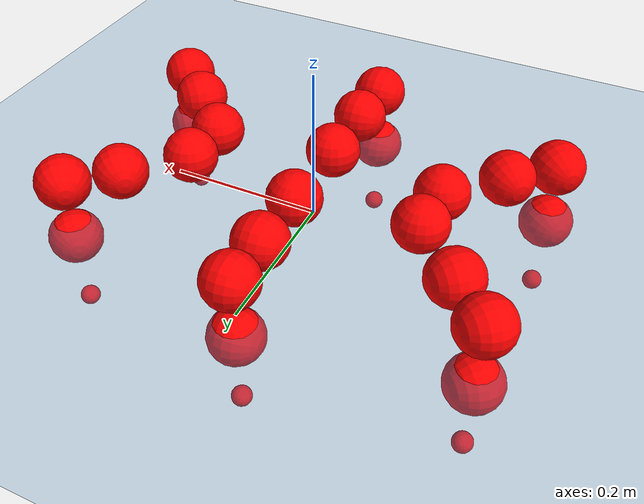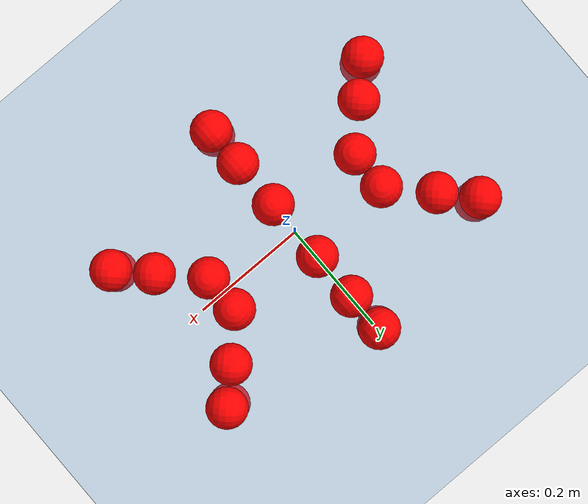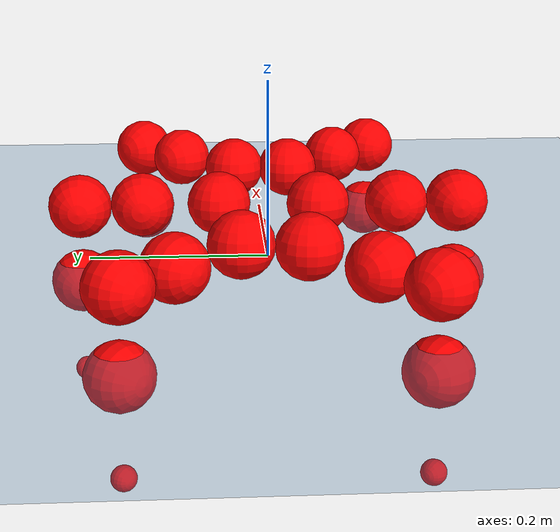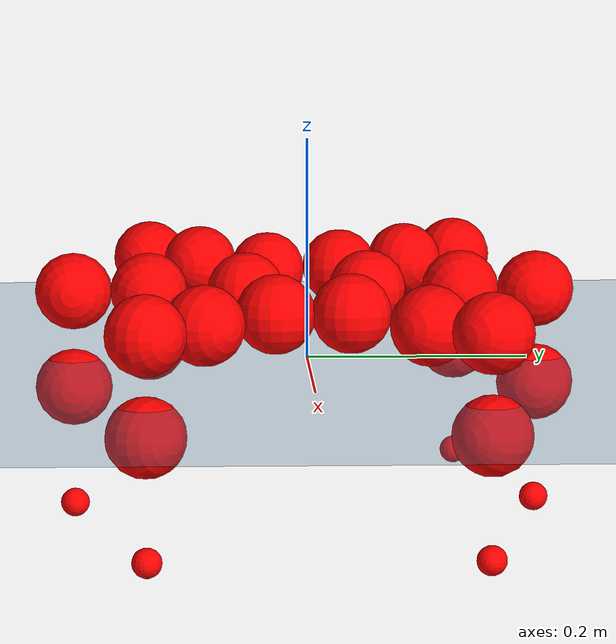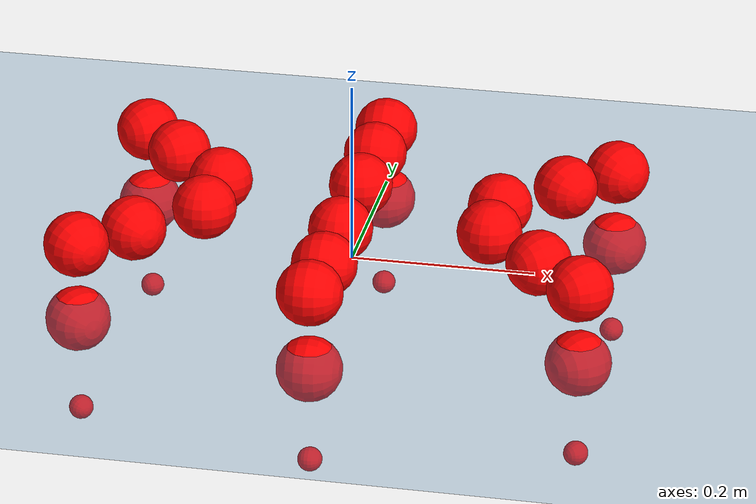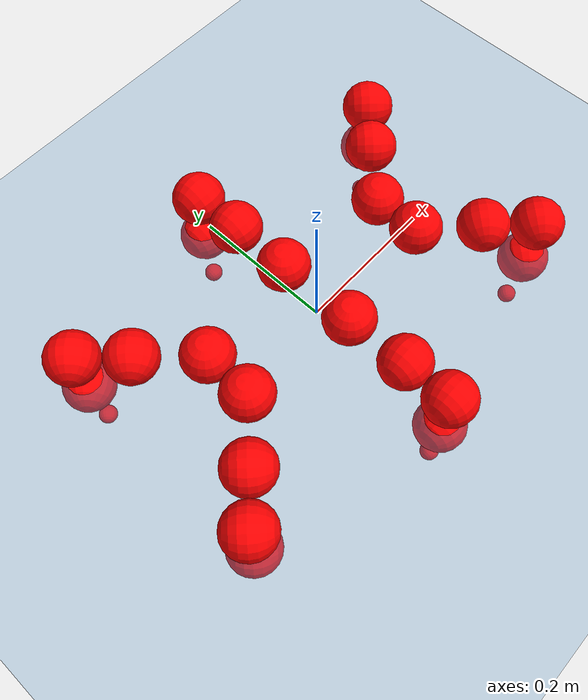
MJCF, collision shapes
<mujoco model="Golem">
  <compiler angle="radian" assetdir="assets" balanceinertia="true" inertiafromgeom="false"/>

  <option timestep="0.005" density="1.2" viscosity="2e-05"/>

  <size nkey="1"/>

  <visual>
    <quality shadowsize="8192"/>
    <map shadowclip="0.5"/>
  </visual>

  <default>
    <default class="/">
      <joint armature="0.01" damping="0.01" frictionloss="0.01"/>
      <geom contype="0" conaffinity="0" group="1" solref="-1000 -80"/>
      <site size="0.01 0.005 0.005" group="5"/>
      <general forcelimited="true" biastype="affine" gainprm="25" biasprm="0 -25 -0.5"/>
      <default class="visual">
        <geom type="mesh" group="2"/>
      </default>
      <default class="collision">
        <geom group="3"/>
      </default>
      <default class="foot">
        <geom size="0.01 0 0" condim="6" group="4" priority="1" solimp="0.015 1 0.01"/>
      </default>
      <default class="reward_collision_sphere">
        <geom group="5" rgba="1 0 0 1"/>
      </default>
    </default>
  </default>

  <asset>
    <texture type="skybox" colorspace="auto" name="//unnamed_texture_0" builtin="gradient" rgb1="0.95 0.95 0.95" rgb2="0.95 0.95 0.95" width="100" height="600"/>
    <texture type="2d" colorspace="auto" name="texplane" builtin="checker" rgb1="0.345 0.575 0.748" rgb2="0.345 0.575 0.748" markrgb="1 1 1" width="512" height="512"/>
    <material name="MatPlane" class="/" texture="texplane" texuniform="true" texrepeat="2 2" specular="0.9"/>
    <mesh name="body" class="/" file="body.stl" scale="0.001 0.001 0.001"/>
    <mesh name="coxa" class="/" file="coxa.stl" scale="0.001 0.001 0.001"/>
    <mesh name="femur" class="/" file="femur.stl" scale="0.001 0.001 0.001"/>
    <mesh name="tibia" class="/" file="tibia.stl" scale="0.001 0.001 0.001"/>
    <mesh name="tarsus" class="/" file="tarsus.stl" scale="0.001 0.001 0.001"/>
  </asset>

  <worldbody>
    <geom name="floor" class="/" size="100 100 0.125" type="plane" group="0" material="MatPlane"/>
    <light name="toplight_shadow" class="/" pos="0 0 5" dir="0.0990148 0.0990148 -0.990148" type="directional" ambient="0.04 0.04 0.04" diffuse="0.55 0.55 0.55" specular="0.12 0.12 0.12"/>
    <light name="toplight_fill" class="/" pos="0 0 5" dir="0.0990148 0.0990148 -0.990148" type="directional" castshadow="false" ambient="0.04 0.04 0.04" diffuse="0.3 0.3 0.3" specular="0.08 0.08 0.08"/>
    <body name="trunk" pos="0.000209772 0.00016399 -0.000150505" quat="1 0.000180512 0.00037004 -0.000405319">
      <inertial pos="-0.000185243 0.00132038 -0.00251049" quat="0.999991 -0.00311676 -0.00254595 0.00155738" mass="2.48548" diaginertia="0.00968353 0.00115153 0.008871"/>
      <joint name="//unnamed_joint_0" type="free"/>
      <geom name="//unnamed_geom_1" class="/" pos="0 0 0.0625688" quat="1 0 0 0" type="mesh" rgba="0.9 0.9 0.9 1" mesh="body"/>
      <site name="imu" class="/" pos="0.130176 0.0019176 0.102446" size="0.00874082"/>
      <camera name="track" class="/" pos="0 -1.29819 0" quat="0.707107 0.707107 0 0" mode="trackcom"/>
      <camera name="ego_camera" class="/" pos="0.129417 0 0.0977637" quat="-0.5 -0.5 0.5 0.5"/>
      <body name="coxa_RR" pos="-0.176889 -0.0541333 0.0617385" quat="0.383007 -0.000162099 4.13369e-05 -0.923746">
        <inertial pos="-0.00076244 -0.000805667 -0.000720602" quat="0.999967 0.00727923 0.000728071 0.00340042" mass="0.137348" diaginertia="0.00990116 0.00115444 0.00907711"/>
        <joint name="coxa_joint_RR" class="/" pos="0 0 0" axis="0.0011328 0.000981896 -0.999999" range="-3.14016 3.10671" armature="0.00938916" damping="0.00150042" frictionloss="0.0086976"/>
        <geom name="//unnamed_geom_2" class="/" type="mesh" rgba="0.2 0.2 0.2 1" mesh="coxa"/>
        <geom name="//unnamed_geom_3" class="reward_collision_sphere" size="0.0349633" pos="-0.0298654 0 0"/>
        <body name="femur_RR" pos="0.0591047 0.000978051 -0.00110225" quat="0.499868 -0.500038 0.500146 0.499948">
          <inertial pos="0.000878968 -0.000946275 0.000204603" quat="0.999993 0.000305107 -0.00368559 -0.000991482" mass="0.132794" diaginertia="0.0096794 0.00114124 0.008906"/>
          <joint name="femur_joint_RR" class="/" pos="0 0 0" axis="-3.8544e-05 0.00174936 -0.999998" range="-3.15619 3.1522" armature="0.00879782" damping="0.000972729" frictionloss="0.00834834"/>
          <geom name="//unnamed_geom_4" class="/" type="mesh" rgba="0.9 0.9 0.9 1" mesh="femur"/>
          <geom name="//unnamed_geom_5" class="reward_collision_sphere" size="0.0349633"/>
          <body name="tibia_RR" pos="0.000803846 -0.0700584 -0.000477532" quat="-0.000262443 1 -0.000132326 -0.000172494">
            <inertial pos="0.000196961 0.000630455 -0.000166874" quat="0.999989 -0.0042904 -0.00033182 0.00158485" mass="0.136136" diaginertia="0.00966348 0.00114927 0.00892426"/>
            <joint name="tibia_joint_RR" class="/" pos="0 0 0" axis="-0.00192425 0.00136081 0.999997" range="-3.12268 3.14384" armature="0.00879982" damping="0" frictionloss="0.00863377"/>
            <geom name="//unnamed_geom_6" class="/" type="mesh" rgba="0.2 0.2 0.2 1" mesh="tibia"/>
            <geom name="//unnamed_geom_7" class="reward_collision_sphere" size="0.0349633"/>
            <body name="tarsus_RR" pos="0.0873912 0.000970247 -0.00010182" quat="1 5.87864e-05 0.000293101 0.000270085">
              <inertial pos="0.061476 0.00051886 0.000693441" quat="0.50045 0.500019 0.499424 0.500106" mass="0.135356" diaginertia="0.0098513 0.00116621 0.00901964"/>
              <joint name="tarsus_joint_RR" class="/" pos="0 0 0" axis="-0.000786149 -0.00132554 0.999999" stiffness="0.00249718" range="-3.13589 3.13757" armature="0.00894764" damping="0.0411207" frictionloss="0.00868051"/>
              <geom name="//unnamed_geom_8" class="/" type="mesh" rgba="0.9 0.9 0.9 1" mesh="tarsus"/>
              <geom name="foot_1" class="foot" size="0.00859737" pos="0.111498 0 0" quat="0 -0.707107 0 0.707107"/>
              <geom name="//unnamed_geom_10" class="reward_collision_sphere" size="0.0349633"/>
              <geom name="//unnamed_geom_11" class="reward_collision_sphere" size="0.0131112" pos="0.107018 0 0"/>
              <site name="foot_1" class="foot" pos="0.111498 0 0" quat="0 -0.707107 0 0.707107" size="0.00874082"/>
            </body>
          </body>
        </body>
      </body>
      <body name="coxa_RM" pos="-0.00127381 -0.0858663 0.0615882" quat="0.707285 0.000261373 0.000112895 -0.706929">
        <inertial pos="-0.000519255 5.2842e-05 7.95505e-05" quat="0.999999 7.50975e-05 -0.0012819 0.000110654" mass="0.135178" diaginertia="0.0100108 0.00115216 0.00900058"/>
        <joint name="coxa_joint_RM" class="/" pos="0 0 0" axis="0.000344402 0.00146036 -0.999999" range="-3.13753 3.13431" armature="0.00863574" damping="0.00678425" frictionloss="0.00882352"/>
        <geom name="//unnamed_geom_12" class="/" type="mesh" rgba="0.2 0.2 0.2 1" mesh="coxa"/>
        <geom name="//unnamed_geom_13" class="reward_collision_sphere" size="0.0349633" pos="-0.0298654 0 0"/>
        <body name="femur_RM" pos="0.0582976 0.000753707 0.000311825" quat="0.499764 -0.499748 0.500101 0.500387">
          <inertial pos="0.000400063 0.000608276 -0.000789646" quat="0.999976 -0.00265882 -0.00515622 -0.00371834" mass="0.129336" diaginertia="0.00969507 0.00112543 0.00874405"/>
          <joint name="femur_joint_RM" class="/" pos="0 0 0" axis="-0.001528 -0.000572572 -0.999999" stiffness="4.15672e-05" range="-3.16946 3.14364" armature="0.00879768" damping="0.00929924" frictionloss="0.0087626"/>
          <geom name="//unnamed_geom_14" class="/" type="mesh" rgba="0.9 0.9 0.9 1" mesh="femur"/>
          <geom name="//unnamed_geom_15" class="reward_collision_sphere" size="0.0349633"/>
          <body name="tibia_RM" pos="-0.000126087 -0.0683702 -0.000994969" quat="-0.000167902 1 -0.000639476 -0.000277827">
            <inertial pos="0.000265855 -0.000351798 0.00016511" quat="1 -5.92227e-05 0.000113851 0.000148899" mass="0.133826" diaginertia="0.00977291 0.00113581 0.00872279"/>
            <joint name="tibia_joint_RM" class="/" pos="0 0 0" axis="-0.00216459 -0.000413552 0.999998" range="-3.14102 3.13601" armature="0.0085168" damping="0.00317844" frictionloss="0.00881177"/>
            <geom name="//unnamed_geom_16" class="/" type="mesh" rgba="0.2 0.2 0.2 1" mesh="tibia"/>
            <geom name="//unnamed_geom_17" class="reward_collision_sphere" size="0.0349633"/>
            <body name="tarsus_RM" pos="0.0880512 0.000332905 0.000697469" quat="1 0.000341193 -8.48524e-05 -0.000153462">
              <inertial pos="0.0598978 0.000313334 0.000121561" quat="0.498057 0.49859 0.501367 0.501974" mass="0.133835" diaginertia="0.00969864 0.00115447 0.00877293"/>
              <joint name="tarsus_joint_RM" class="/" pos="0 0 0" axis="0.00183914 0.00157333 0.999997" stiffness="0.000322269" range="-3.13249 3.16919" armature="0.00909977" damping="0.00528538" frictionloss="0.00807471"/>
              <geom name="//unnamed_geom_18" class="/" type="mesh" rgba="0.9 0.9 0.9 1" mesh="tarsus"/>
              <geom name="foot_2" class="foot" size="0.00861655" pos="0.111498 0 0" quat="0 -0.707107 0 0.707107"/>
              <geom name="//unnamed_geom_20" class="reward_collision_sphere" size="0.0349633"/>
              <geom name="//unnamed_geom_21" class="reward_collision_sphere" size="0.0131112" pos="0.107018 0 0"/>
              <site name="foot_2" class="foot" pos="0.111498 0 0" quat="0 -0.707107 0 0.707107" size="0.00874082"/>
            </body>
          </body>
        </body>
      </body>
      <body name="coxa_RF" pos="0.176519 -0.0539033 0.0618495" quat="0.92385 0.000109161 -0.000250151 -0.382756">
        <inertial pos="0.00117134 0.000989271 0.00022142" quat="0.999999 -0.000172182 0.0010647 -0.00117639" mass="0.134457" diaginertia="0.00977555 0.00116234 0.00891333"/>
        <joint name="coxa_joint_RF" class="/" pos="0 0 0" axis="-0.000606032 0.000121986 -1" range="-3.15873 3.11688" armature="0.00911771" damping="0.00399027" frictionloss="0.00895868"/>
        <geom name="//unnamed_geom_22" class="/" type="mesh" rgba="0.2 0.2 0.2 1" mesh="coxa"/>
        <geom name="//unnamed_geom_23" class="reward_collision_sphere" size="0.0349633" pos="-0.0298654 0 0"/>
        <body name="femur_RF" pos="0.0583717 0.000488737 -0.000662507" quat="0.500012 -0.500139 0.499782 0.500067">
          <inertial pos="0.000487154 0.000537016 0.00144208" quat="0.999997 0.00196267 0.000776698 -0.00104875" mass="0.13042" diaginertia="0.00963921 0.00113412 0.00867089"/>
          <joint name="femur_joint_RF" class="/" pos="0 0 0" axis="0.00203914 -0.007375 -0.999971" range="-3.14525 3.15492" armature="0.00944466" damping="0.00981597" frictionloss="0.00872255"/>
          <geom name="//unnamed_geom_24" class="/" type="mesh" rgba="0.9 0.9 0.9 1" mesh="femur"/>
          <geom name="//unnamed_geom_25" class="reward_collision_sphere" size="0.0349633"/>
          <body name="tibia_RF" pos="0.000897498 -0.0709933 0.000523573" quat="0.000173668 1 -0.00020563 0.000467763">
            <inertial pos="0.000688637 1.34595e-05 0.000172497" quat="1 1.40243e-05 -0.000140016 0.000422481" mass="0.132912" diaginertia="0.00982718 0.00114826 0.00910081"/>
            <joint name="tibia_joint_RF" class="/" pos="0 0 0" axis="0.000175879 -6.74057e-05 1" range="-3.14097 3.1584" armature="0.00891073" damping="0.0113535" frictionloss="0.0084364"/>
            <geom name="//unnamed_geom_26" class="/" type="mesh" rgba="0.2 0.2 0.2 1" mesh="tibia"/>
            <geom name="//unnamed_geom_27" class="reward_collision_sphere" size="0.0349633"/>
            <body name="tarsus_RF" pos="0.0863465 0.000446365 -0.000310655" quat="1 -0.000361487 0.000524996 -0.000198367">
              <inertial pos="0.0587504 0.000119647 -0.000472858" quat="0.501431 0.498522 0.501409 0.49863" mass="0.13446" diaginertia="0.00988433 0.00116274 0.00892904"/>
              <joint name="tarsus_joint_RF" class="/" pos="0 0 0" axis="-0.00486347 -0.00665546 0.999966" stiffness="0.000646868" range="-3.14179 3.13909" armature="0.00879222" damping="0" frictionloss="0.00843865"/>
              <geom name="//unnamed_geom_28" class="/" type="mesh" rgba="0.9 0.9 0.9 1" mesh="tarsus"/>
              <geom name="foot_3" class="foot" size="0.00883058" pos="0.111498 0 0" quat="0 -0.707107 0 0.707107"/>
              <geom name="//unnamed_geom_30" class="reward_collision_sphere" size="0.0349633"/>
              <geom name="//unnamed_geom_31" class="reward_collision_sphere" size="0.0131112" pos="0.107018 0 0"/>
              <site name="foot_3" class="foot" pos="0.111498 0 0" quat="0 -0.707107 0 0.707107" size="0.00874082"/>
            </body>
          </body>
        </body>
      </body>
      <body name="coxa_LR" pos="-0.174839 0.0563461 0.0644671" quat="0.38238 -1.40794e-05 -4.53048e-05 0.924005">
        <inertial pos="-0.000331297 -2.99877e-05 0.000149024" quat="0.999999 0.000706781 0.000361171 0.00119109" mass="0.134613" diaginertia="0.00967763 0.00115509 0.00873121"/>
        <joint name="coxa_joint_LR" class="/" pos="0 0 0" axis="-0.000524438 -0.00656657 -0.999978" range="-3.13279 3.14002" armature="0.00919863" damping="0.0047691" frictionloss="0.00868337"/>
        <geom name="//unnamed_geom_32" class="/" type="mesh" rgba="0.2 0.2 0.2 1" mesh="coxa"/>
        <geom name="//unnamed_geom_33" class="reward_collision_sphere" size="0.0349633" pos="-0.0298654 0 0"/>
        <body name="femur_LR" pos="0.061013 -0.00212036 -0.00141902" quat="0.500257 -0.500164 0.499521 0.500057">
          <inertial pos="0.000216582 -0.000690927 -0.00111715" quat="0.99999 -0.000590896 -0.0041939 -0.00150734" mass="0.132373" diaginertia="0.00967049 0.00116539 0.00885778"/>
          <joint name="femur_joint_LR" class="/" pos="0 0 0" axis="3.21567e-05 -0.000902837 1" range="-3.1566 3.15363" armature="0.00868884" damping="0" frictionloss="0.00893779"/>
          <geom name="//unnamed_geom_34" class="/" type="mesh" rgba="0.9 0.9 0.9 1" mesh="femur"/>
          <geom name="//unnamed_geom_35" class="reward_collision_sphere" size="0.0349633"/>
          <body name="tibia_LR" pos="0.000653966 -0.0708838 -0.00161939" quat="-8.54323e-05 1 5.66169e-05 2.15563e-05">
            <inertial pos="-0.00181122 0.00071181 -0.000835002" quat="0.999997 -0.000935042 -0.00236655 5.10244e-05" mass="0.133534" diaginertia="0.00969859 0.00115276 0.00893106"/>
            <joint name="tibia_joint_LR" class="/" pos="0 0 0" axis="-0.000174358 -0.00164544 -0.999999" range="-3.11984 3.14042" armature="0.0091312" damping="0.00346574" frictionloss="0.00908035"/>
            <geom name="//unnamed_geom_36" class="/" type="mesh" rgba="0.2 0.2 0.2 1" mesh="tibia"/>
            <geom name="//unnamed_geom_37" class="reward_collision_sphere" size="0.0349633"/>
            <body name="tarsus_LR" pos="0.0888586 0.000938784 0.00130071" quat="1 -9.84465e-06 2.61619e-05 3.23433e-06">
              <inertial pos="0.0606611 0.000884024 -0.00024807" quat="0.500488 0.499483 0.500299 0.49973" mass="0.136422" diaginertia="0.00997228 0.00115598 0.00902044"/>
              <joint name="tarsus_joint_LR" class="/" pos="0 0 0" axis="-0.00487436 -0.00572076 -0.999972" stiffness="0.00360009" range="-3.149 3.1405" armature="0.0085961" damping="0.0291534" frictionloss="0.00873529"/>
              <geom name="//unnamed_geom_38" class="/" type="mesh" rgba="0.9 0.9 0.9 1" mesh="tarsus"/>
              <geom name="foot_4" class="foot" size="0.0084382" pos="0.111498 0 0" quat="0.707107 0 -0.707107 0"/>
              <geom name="//unnamed_geom_40" class="reward_collision_sphere" size="0.0349633"/>
              <geom name="//unnamed_geom_41" class="reward_collision_sphere" size="0.0131112" pos="0.107018 0 0"/>
              <site name="foot_4" class="foot" pos="0.111498 0 0" quat="0.707107 0 -0.707107 0" size="0.00874082"/>
            </body>
          </body>
        </body>
      </body>
      <body name="coxa_LM" pos="-0.00156322 0.0843137 0.0631695" quat="0.70701 6.1117e-05 -0.000103679 0.707203">
        <inertial pos="0.00130279 0.00131592 -3.28229e-05" quat="1 2.91827e-05 7.42009e-05 0.000193881" mass="0.13373" diaginertia="0.00974107 0.00115511 0.00896447"/>
        <joint name="coxa_joint_LM" class="/" pos="0 0 0" axis="0.00121236 0.0033794 -0.999994" range="-3.15227 3.15252" armature="0.00896496" damping="0.00757199" frictionloss="0.00841362"/>
        <geom name="//unnamed_geom_42" class="/" type="mesh" rgba="0.2 0.2 0.2 1" mesh="coxa"/>
        <geom name="//unnamed_geom_43" class="reward_collision_sphere" size="0.0349633" pos="-0.0298654 0 0"/>
        <body name="femur_LM" pos="0.0549313 0.000511881 -0.000146623" quat="0.500557 -0.499593 0.499639 0.50021">
          <inertial pos="0.000331174 -0.000820698 -0.000288269" quat="1 -0.00018336 -0.000112687 -1.18817e-06" mass="0.133169" diaginertia="0.00975352 0.00115539 0.00889853"/>
          <joint name="femur_joint_LM" class="/" pos="0 0 0" axis="0.0019249 -0.00158848 0.999997" range="-3.15811 3.13976" armature="0.00816279" damping="0.00339186" frictionloss="0.00879621"/>
          <geom name="//unnamed_geom_44" class="/" type="mesh" rgba="0.9 0.9 0.9 1" mesh="femur"/>
          <geom name="//unnamed_geom_45" class="reward_collision_sphere" size="0.0349633"/>
          <body name="tibia_LM" pos="0.000806267 -0.0687769 0.000924638" quat="-1.07965e-05 1 2.63984e-06 4.73095e-06">
            <inertial pos="-0.000865148 -0.00104573 -0.000983401" quat="0.999994 -0.00188429 0.00231607 -0.00187098" mass="0.132655" diaginertia="0.00978427 0.00116701 0.00913125"/>
            <joint name="tibia_joint_LM" class="/" pos="0 0 0" axis="-0.00111376 -0.000123103 -0.999999" range="-3.12578 3.13607" armature="0.00884022" damping="0" frictionloss="0.0090393"/>
            <geom name="//unnamed_geom_46" class="/" type="mesh" rgba="0.2 0.2 0.2 1" mesh="tibia"/>
            <geom name="//unnamed_geom_47" class="reward_collision_sphere" size="0.0349633"/>
            <body name="tarsus_LM" pos="0.0861847 9.06235e-05 -0.00168361" quat="1 0.000110366 -1.00025e-05 8.52344e-05">
              <inertial pos="0.0602562 -0.000383053 -6.59788e-05" quat="0.499726 0.497741 0.503556 0.498958" mass="0.137151" diaginertia="0.00974711 0.00116859 0.00894365"/>
              <joint name="tarsus_joint_LM" class="/" pos="0 0 0" axis="0.000753257 0.00808754 -0.999967" stiffness="0.000555716" range="-3.13974 3.14726" armature="0.00885788" damping="0.00801775" frictionloss="0.00872984"/>
              <geom name="//unnamed_geom_48" class="/" type="mesh" rgba="0.9 0.9 0.9 1" mesh="tarsus"/>
              <geom name="foot_5" class="foot" size="0.00848286" pos="0.111498 0 0" quat="0.707107 0 -0.707107 0"/>
              <geom name="//unnamed_geom_50" class="reward_collision_sphere" size="0.0349633"/>
              <geom name="//unnamed_geom_51" class="reward_collision_sphere" size="0.0131112" pos="0.107018 0 0"/>
              <site name="foot_5" class="foot" pos="0.111498 0 0" quat="0.707107 0 -0.707107 0" size="0.00874082"/>
            </body>
          </body>
        </body>
      </body>
      <body name="coxa_LF" pos="0.177223 0.0540915 0.0623825" quat="0.92388 -2.82007e-07 -1.07353e-07 0.382683">
        <inertial pos="8.7149e-05 -8.88251e-05 0.000514079" quat="1 4.62075e-05 0.000225375 0.000131271" mass="0.131624" diaginertia="0.00972253 0.00114482 0.00887581"/>
        <joint name="coxa_joint_LF" class="/" pos="0 0 0" axis="-1.51732e-05 5.44065e-05 -1" range="-3.13328 3.15763" armature="0.00862737" damping="0.00370061" frictionloss="0.00868998"/>
        <geom name="//unnamed_geom_52" class="/" type="mesh" rgba="0.2 0.2 0.2 1" mesh="coxa"/>
        <geom name="//unnamed_geom_53" class="reward_collision_sphere" size="0.0349633" pos="-0.0298654 0 0"/>
        <body name="femur_LF" pos="0.0594357 0.00197544 -0.00210081" quat="0.500247 -0.500055 0.499846 0.499852">
          <inertial pos="-0.000525363 -0.000876877 0.000268597" quat="0.999999 0.00111177 0.000568366 0.000983677" mass="0.134735" diaginertia="0.00975898 0.00116464 0.00902338"/>
          <joint name="femur_joint_LF" class="/" pos="0 0 0" axis="-0.00289507 0.0039196 0.999988" range="-3.13899 3.12272" armature="0.00866701" damping="0" frictionloss="0.00880559"/>
          <geom name="//unnamed_geom_54" class="/" type="mesh" rgba="0.9 0.9 0.9 1" mesh="femur"/>
          <geom name="//unnamed_geom_55" class="reward_collision_sphere" size="0.0349633"/>
          <body name="tibia_LF" pos="-0.000453192 -0.0704862 -0.000481322" quat="5.30364e-05 1 5.56785e-07 -6.69413e-05">
            <inertial pos="-0.000571204 -0.000960184 0.000556547" quat="0.99999 -0.00153191 -0.00410919 0.000774966" mass="0.133282" diaginertia="0.00978944 0.00113661 0.0088502"/>
            <joint name="tibia_joint_LF" class="/" pos="0 0 0" axis="5.0711e-05 -0.00412372 -0.999991" range="-3.14581 3.15654" armature="0.00806115" damping="0.00260717" frictionloss="0.00879256"/>
            <geom name="//unnamed_geom_56" class="/" type="mesh" rgba="0.2 0.2 0.2 1" mesh="tibia"/>
            <geom name="//unnamed_geom_57" class="reward_collision_sphere" size="0.0349633"/>
            <body name="tarsus_LF" pos="0.0871056 -0.000631135 -0.000316441" quat="1 0.000560187 0.000588418 5.85764e-05">
              <inertial pos="0.060046 -0.000319716 0.000184003" quat="0.499907 0.50027 0.499363 0.500459" mass="0.133423" diaginertia="0.00981814 0.00115157 0.00887998"/>
              <joint name="tarsus_joint_LF" class="/" pos="0 0 0" axis="-0.00383024 -0.00212267 -0.99999" range="-3.12905 3.14786" armature="0.00889177" damping="0.00988362" frictionloss="0.00887104"/>
              <geom name="//unnamed_geom_58" class="/" type="mesh" rgba="0.9 0.9 0.9 1" mesh="tarsus"/>
              <geom name="foot_6" class="foot" size="0.00860846" pos="0.111498 0 0" quat="0.707107 0 -0.707107 0"/>
              <geom name="//unnamed_geom_60" class="reward_collision_sphere" size="0.0349633"/>
              <geom name="//unnamed_geom_61" class="reward_collision_sphere" size="0.0131112" pos="0.107018 0 0"/>
              <site name="foot_6" class="foot" pos="0.111498 0 0" quat="0.707107 0 -0.707107 0" size="0.00874082"/>
            </body>
          </body>
        </body>
      </body>
    </body>
  </worldbody>

  <contact>
    <pair class="/" geom1="floor" geom2="foot_1" name="//unnamed_contact_0"/>
    <pair class="/" geom1="floor" geom2="foot_2" name="//unnamed_contact_1"/>
    <pair class="/" geom1="floor" geom2="foot_3" name="//unnamed_contact_2"/>
    <pair class="/" geom1="floor" geom2="foot_4" name="//unnamed_contact_3"/>
    <pair class="/" geom1="floor" geom2="foot_5" name="//unnamed_contact_4"/>
    <pair class="/" geom1="floor" geom2="foot_6" name="//unnamed_contact_5"/>
  </contact>

  <actuator>
    <general name="coxa_joint_RR" class="/" joint="coxa_joint_RR" forcerange="-6.46414 6.46414" gainprm="20.7782" biasprm="0 -20.7782 -0.456147"/>
    <general name="femur_joint_RR" class="/" joint="femur_joint_RR" forcerange="-6.37045 6.37045" gainprm="20.7782" biasprm="0 -20.7782 -0.456147"/>
    <general name="tibia_joint_RR" class="/" joint="tibia_joint_RR" forcerange="-6.32219 6.32219" gainprm="20.7782" biasprm="0 -20.7782 -0.456147"/>
    <general name="tarsus_joint_RR" class="/" joint="tarsus_joint_RR" forcerange="-6.44234 6.44234" gainprm="20.7782" biasprm="0 -20.7782 -0.456147"/>
    <general name="coxa_joint_RM" class="/" joint="coxa_joint_RM" forcerange="-6.49372 6.49372" gainprm="20.7782" biasprm="0 -20.7782 -0.456147"/>
    <general name="femur_joint_RM" class="/" joint="femur_joint_RM" forcerange="-6.36793 6.36793" gainprm="20.7782" biasprm="0 -20.7782 -0.456147"/>
    <general name="tibia_joint_RM" class="/" joint="tibia_joint_RM" forcerange="-6.3642 6.3642" gainprm="20.7782" biasprm="0 -20.7782 -0.456147"/>
    <general name="tarsus_joint_RM" class="/" joint="tarsus_joint_RM" forcerange="-6.20685 6.20685" gainprm="20.7782" biasprm="0 -20.7782 -0.456147"/>
    <general name="coxa_joint_RF" class="/" joint="coxa_joint_RF" forcerange="-6.30958 6.30958" gainprm="20.7782" biasprm="0 -20.7782 -0.456147"/>
    <general name="femur_joint_RF" class="/" joint="femur_joint_RF" forcerange="-6.41577 6.41577" gainprm="20.7782" biasprm="0 -20.7782 -0.456147"/>
    <general name="tibia_joint_RF" class="/" joint="tibia_joint_RF" forcerange="-6.31051 6.31051" gainprm="20.7782" biasprm="0 -20.7782 -0.456147"/>
    <general name="tarsus_joint_RF" class="/" joint="tarsus_joint_RF" forcerange="-6.15631 6.15631" gainprm="20.7782" biasprm="0 -20.7782 -0.456147"/>
    <general name="coxa_joint_LR" class="/" joint="coxa_joint_LR" forcerange="-6.27543 6.27543" gainprm="20.7782" biasprm="0 -20.7782 -0.456147"/>
    <general name="femur_joint_LR" class="/" joint="femur_joint_LR" forcerange="-6.59333 6.59333" gainprm="20.7782" biasprm="0 -20.7782 -0.456147"/>
    <general name="tibia_joint_LR" class="/" joint="tibia_joint_LR" forcerange="-6.123 6.123" gainprm="20.7782" biasprm="0 -20.7782 -0.456147"/>
    <general name="tarsus_joint_LR" class="/" joint="tarsus_joint_LR" forcerange="-6.70299 6.70299" gainprm="20.7782" biasprm="0 -20.7782 -0.456147"/>
    <general name="coxa_joint_LM" class="/" joint="coxa_joint_LM" forcerange="-6.15849 6.15849" gainprm="20.7782" biasprm="0 -20.7782 -0.456147"/>
    <general name="femur_joint_LM" class="/" joint="femur_joint_LM" forcerange="-6.43212 6.43212" gainprm="20.7782" biasprm="0 -20.7782 -0.456147"/>
    <general name="tibia_joint_LM" class="/" joint="tibia_joint_LM" forcerange="-6.41234 6.41234" gainprm="20.7782" biasprm="0 -20.7782 -0.456147"/>
    <general name="tarsus_joint_LM" class="/" joint="tarsus_joint_LM" forcerange="-6.59344 6.59344" gainprm="20.7782" biasprm="0 -20.7782 -0.456147"/>
    <general name="coxa_joint_LF" class="/" joint="coxa_joint_LF" forcerange="-6.41294 6.41294" gainprm="20.7782" biasprm="0 -20.7782 -0.456147"/>
    <general name="femur_joint_LF" class="/" joint="femur_joint_LF" forcerange="-6.39394 6.39394" gainprm="20.7782" biasprm="0 -20.7782 -0.456147"/>
    <general name="tibia_joint_LF" class="/" joint="tibia_joint_LF" forcerange="-6.20975 6.20975" gainprm="20.7782" biasprm="0 -20.7782 -0.456147"/>
    <general name="tarsus_joint_LF" class="/" joint="tarsus_joint_LF" forcerange="-6.30111 6.30111" gainprm="20.7782" biasprm="0 -20.7782 -0.456147"/>
  </actuator>

  <sensor>
    <gyro site="imu" name="imu_angular_velocity"/>
    <velocimeter site="imu" name="imu_linear_velocity"/>
    <framelinvel objtype="site" objname="foot_1" name="foot_1_global_linear_velocity"/>
    <framelinvel objtype="site" objname="foot_2" name="foot_2_global_linear_velocity"/>
    <framelinvel objtype="site" objname="foot_3" name="foot_3_global_linear_velocity"/>
    <framelinvel objtype="site" objname="foot_4" name="foot_4_global_linear_velocity"/>
    <framelinvel objtype="site" objname="foot_5" name="foot_5_global_linear_velocity"/>
    <framelinvel objtype="site" objname="foot_6" name="foot_6_global_linear_velocity"/>
  </sensor>

  <keyframe>
    <key name="home" qpos="0 0 0.1457 1 0 0 0 0 0 0 0 0 0 0 0 0 0 0 0 0 0 0 0 0 0 0 0 0 0 0 0"/>
  </keyframe>
</mujoco>
